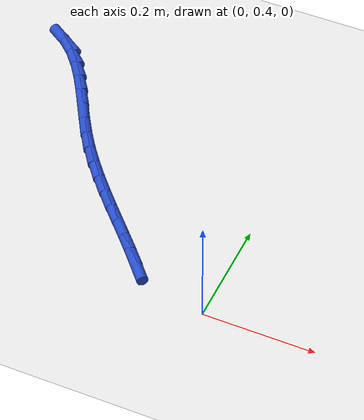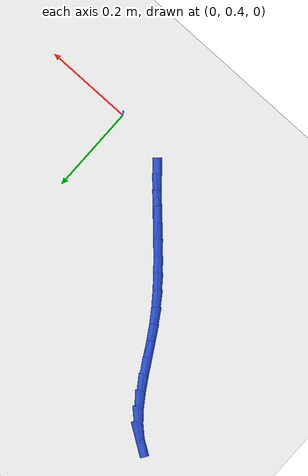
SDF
<sdf version="1.6">
 <world name="default">
  <model name="ground_plane">
   <static>1</static>
   <link name="link">
    <collision name="collision">
     <geometry><plane><normal>0 0 1</normal><size>100 100</size></plane></geometry>
     <surface><friction><ode><mu>100</mu><mu2>50</mu2></ode></friction></surface>
    </collision>
    <visual name="visual">
     <cast_shadows>0</cast_shadows>
     <geometry><plane><normal>0 0 1</normal><size>100 100</size></plane></geometry>
     <material>
      <script><uri>file://media/materials/scripts/gazebo.material</uri><name>Gazebo/WhiteGlow</name></script>
     </material>
    </visual>
   </link>
  </model>
  <model name="line">
   <link name="link_14">
    <pose>-0.14273553435870243 0.4487053610925131 0.01 0 1.57 -0.8477418922451007</pose>
    <collision name="collision">
     <geometry><cylinder><radius>0.01</radius><length>0.08</length></cylinder></geometry>
    </collision>
    <visual name="visual">
     <material>
      <script><name>Gazebo/Blue</name><uri>file://media/materials/scripts/gazebo.material</uri></script>
     </material>
     <geometry><cylinder><radius>0.01</radius><length>0.08</length></cylinder></geometry>
    </visual>
   </link>
   <link name="link_15">
    <pose>-0.1655758042465673 0.47458708309839903 0.01 0 1.57 -0.8287737561467782</pose>
    <collision name="collision">
     <geometry><cylinder><radius>0.01</radius><length>0.08</length></cylinder></geometry>
    </collision>
    <visual name="visual">
     <material>
      <script><name>Gazebo/Blue</name><uri>file://media/materials/scripts/gazebo.material</uri></script>
     </material>
     <geometry><cylinder><radius>0.01</radius><length>0.08</length></cylinder></geometry>
    </visual>
   </link>
   <link name="link_16">
    <pose>-0.18915651929046648 0.5003076109211843 0.01 0 1.57 -0.8198539406072032</pose>
    <collision name="collision">
     <geometry><cylinder><radius>0.01</radius><length>0.08</length></cylinder></geometry>
    </collision>
    <visual name="visual">
     <material>
      <script><name>Gazebo/Blue</name><uri>file://media/materials/scripts/gazebo.material</uri></script>
     </material>
     <geometry><cylinder><radius>0.01</radius><length>0.08</length></cylinder></geometry>
    </visual>
   </link>
   <link name="link_17">
    <pose>-0.21320211018901075 0.5260700558768696 0.01 0 1.57 -0.8206640360367449</pose>
    <collision name="collision">
     <geometry><cylinder><radius>0.01</radius><length>0.08</length></cylinder></geometry>
    </collision>
    <visual name="visual">
     <material>
      <script><name>Gazebo/Blue</name><uri>file://media/materials/scripts/gazebo.material</uri></script>
     </material>
     <geometry><cylinder><radius>0.01</radius><length>0.08</length></cylinder></geometry>
    </visual>
   </link>
   <link name="link_18">
    <pose>-0.2374370076408108 0.5520775292814563 0.01 0 1.57 -0.8309552527117083</pose>
    <collision name="collision">
     <geometry><cylinder><radius>0.01</radius><length>0.08</length></cylinder></geometry>
    </collision>
    <visual name="visual">
     <material>
      <script><name>Gazebo/Blue</name><uri>file://media/materials/scripts/gazebo.material</uri></script>
     </material>
     <geometry><cylinder><radius>0.01</radius><length>0.08</length></cylinder></geometry>
    </visual>
   </link>
   <link name="link_19">
    <pose>-0.26158564234447745 0.578533142450945 0.01 0 1.57 -0.8505411197937323</pose>
    <collision name="collision">
     <geometry><cylinder><radius>0.01</radius><length>0.08</length></cylinder></geometry>
    </collision>
    <visual name="visual">
     <material>
      <script><name>Gazebo/Blue</name><uri>file://media/materials/scripts/gazebo.material</uri></script>
     </material>
     <geometry><cylinder><radius>0.01</radius><length>0.08</length></cylinder></geometry>
    </visual>
   </link>
   <link name="link_20">
    <pose>-0.28537244499862136 0.6056400067013369 0.01 0 1.57 -0.8792667849789805</pose>
    <collision name="collision">
     <geometry><cylinder><radius>0.01</radius><length>0.08</length></cylinder></geometry>
    </collision>
    <visual name="visual">
     <material>
      <script><name>Gazebo/Blue</name><uri>file://media/materials/scripts/gazebo.material</uri></script>
     </material>
     <geometry><cylinder><radius>0.01</radius><length>0.08</length></cylinder></geometry>
    </visual>
   </link>
   <link name="link_21">
    <pose>-0.30852184630185336 0.6336012333486327 0.01 0 1.57 -0.9169575886428631</pose>
    <collision name="collision">
     <geometry><cylinder><radius>0.01</radius><length>0.08</length></cylinder></geometry>
    </collision>
    <visual name="visual">
     <material>
      <script><name>Gazebo/Blue</name><uri>file://media/materials/scripts/gazebo.material</uri></script>
     </material>
     <geometry><cylinder><radius>0.01</radius><length>0.08</length></cylinder></geometry>
    </visual>
   </link>
   <link name="link_22">
    <pose>-0.33075827695278404 0.6626199337088332 0.01 0 1.57 -0.9633492876350978</pose>
    <collision name="collision">
     <geometry><cylinder><radius>0.01</radius><length>0.08</length></cylinder></geometry>
    </collision>
    <visual name="visual">
     <material>
      <script><name>Gazebo/Blue</name><uri>file://media/materials/scripts/gazebo.material</uri></script>
     </material>
     <geometry><cylinder><radius>0.01</radius><length>0.08</length></cylinder></geometry>
    </visual>
   </link>
   <link name="link_23">
    <pose>-0.3518061758280994 0.6928992094604121 0.01 0 1.57 -1.011482517989629</pose>
    <collision name="collision">
     <geometry><cylinder><radius>0.01</radius><length>0.08</length></cylinder></geometry>
    </collision>
    <visual name="visual">
     <material>
      <script><name>Gazebo/Blue</name><uri>file://media/materials/scripts/gazebo.material</uri></script>
     </material>
     <geometry><cylinder><radius>0.01</radius><length>0.08</length></cylinder></geometry>
    </visual>
   </link>
   <link name="link_24">
    <pose>-0.37155519547360316 0.7244474647039084 0.01 0 1.57 -1.0384056332821554</pose>
    <collision name="collision">
     <geometry><cylinder><radius>0.01</radius><length>0.08</length></cylinder></geometry>
    </collision>
    <visual name="visual">
     <material>
      <script><name>Gazebo/Blue</name><uri>file://media/materials/scripts/gazebo.material</uri></script>
     </material>
     <geometry><cylinder><radius>0.01</radius><length>0.08</length></cylinder></geometry>
    </visual>
   </link>
   <link name="link_25">
    <pose>-0.3904845477219 0.7565783319401469 0.01 0 1.57 -1.0397252882237475</pose>
    <collision name="collision">
     <geometry><cylinder><radius>0.01</radius><length>0.08</length></cylinder></geometry>
    </collision>
    <visual name="visual">
     <material>
      <script><name>Gazebo/Blue</name><uri>file://media/materials/scripts/gazebo.material</uri></script>
     </material>
     <geometry><cylinder><radius>0.01</radius><length>0.08</length></cylinder></geometry>
    </visual>
   </link>
   <link name="link_26">
    <pose>-0.4092048965185392 0.7884505327104591 0.01 0 1.57 -1.0147869288378168</pose>
    <collision name="collision">
     <geometry><cylinder><radius>0.01</radius><length>0.08</length></cylinder></geometry>
    </collision>
    <visual name="visual">
     <material>
      <script><name>Gazebo/Blue</name><uri>file://media/materials/scripts/gazebo.material</uri></script>
     </material>
     <geometry><cylinder><radius>0.01</radius><length>0.08</length></cylinder></geometry>
    </visual>
   </link>
   <link name="link_27">
    <pose>-0.4283269058090702 0.8192227885561769 0.01 0 1.57 -0.9611743554528464</pose>
    <collision name="collision">
     <geometry><cylinder><radius>0.01</radius><length>0.08</length></cylinder></geometry>
    </collision>
    <visual name="visual">
     <material>
      <script><name>Gazebo/Blue</name><uri>file://media/materials/scripts/gazebo.material</uri></script>
     </material>
     <geometry><cylinder><radius>0.01</radius><length>0.08</length></cylinder></geometry>
    </visual>
   </link>
   <link name="link_28">
    <pose>-0.4484612395390418 0.8480538210186314 0.01 0 1.57 -0.8749214806405832</pose>
    <collision name="collision">
     <geometry><cylinder><radius>0.01</radius><length>0.08</length></cylinder></geometry>
    </collision>
    <visual name="visual">
     <material>
      <script><name>Gazebo/Blue</name><uri>file://media/materials/scripts/gazebo.material</uri></script>
     </material>
     <geometry><cylinder><radius>0.01</radius><length>0.08</length></cylinder></geometry>
    </visual>
   </link>
   <link name="link_29">
    <pose>-0.4702185616540038 0.874102351639154 0.01 0 1.57 -0.7516675667884567</pose>
    <collision name="collision">
     <geometry><cylinder><radius>0.01</radius><length>0.08</length></cylinder></geometry>
    </collision>
    <visual name="visual">
     <material>
      <script><name>Gazebo/Blue</name><uri>file://media/materials/scripts/gazebo.material</uri></script>
     </material>
     <geometry><cylinder><radius>0.01</radius><length>0.08</length></cylinder></geometry>
    </visual>
   </link>
   <link name="link_30">
    <pose>-0.49420953609950513 0.8965271019590766 0.01 0 1.57 -0.5897933921131159</pose>
    <collision name="collision">
     <geometry><cylinder><radius>0.01</radius><length>0.08</length></cylinder></geometry>
    </collision>
    <visual name="visual">
     <material>
      <script><name>Gazebo/Blue</name><uri>file://media/materials/scripts/gazebo.material</uri></script>
     </material>
     <geometry><cylinder><radius>0.01</radius><length>0.08</length></cylinder></geometry>
    </visual>
   </link>
  </model>
 </world>
</sdf>
